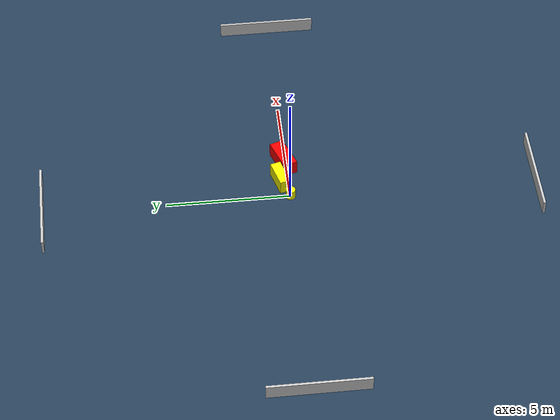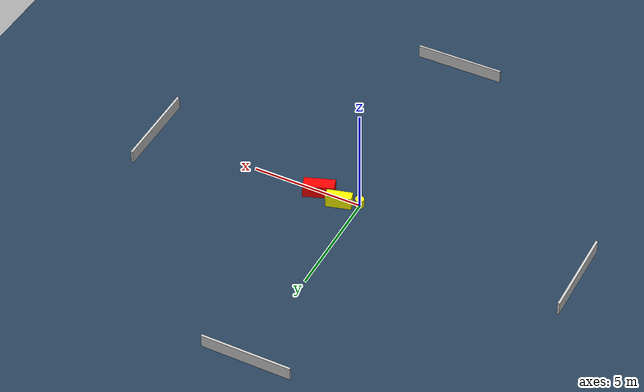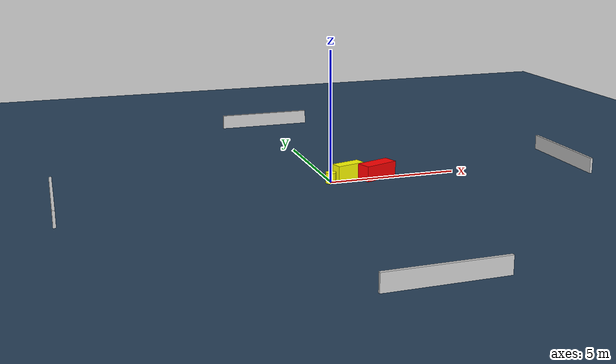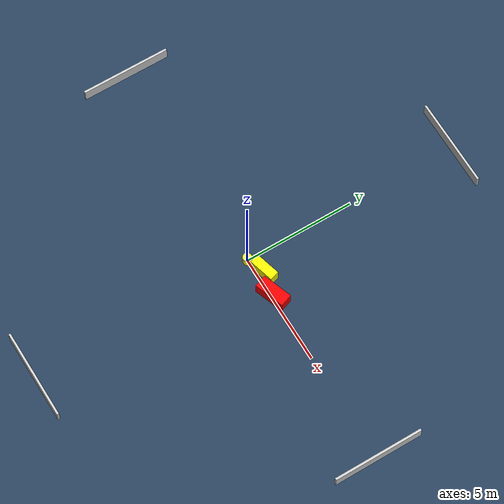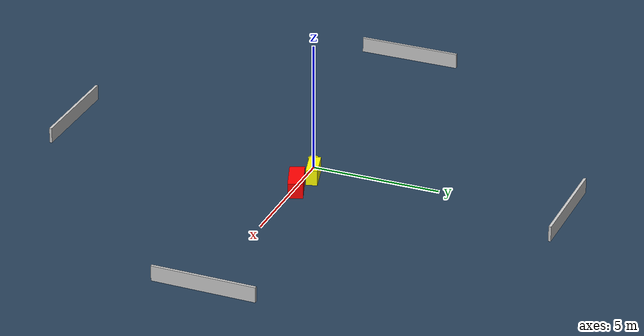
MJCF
<?xml version="1.0" ?>
<mujoco model="generated_environment">
  <option timestep="0.01" integrator="RK4" cone="elliptic"/>
  <default>
    <geom density="1"/>
  </default>
  <asset>
    <texture builtin="gradient" height="3072" name="skybox" rgb1="0.3 0.5 0.7" rgb2="0 0 0" type="skybox" width="512"/>
    <texture builtin="checker" height="300" name="groundplane" rgb1="0.2 0.3 0.4" rgb2="0.1 0.2 0.3" type="2d" width="300"/>
    <material name="groundplane" reflectance="0.2" texrepeat="5 5" texture="groundplane"/>
  </asset>
  <worldbody>
    <light dir="0 0 -1" directional="true" pos="0 0 1.5"/>
    <geom condim="3" friction="0.5 0.005 0.001" material="groundplane" name="floor" pos="0 0 0" size="0 0 0.05" type="plane"/>
    <body name="walls">
      <geom name="wall_1" condim="4" pos="-10.0 0.0 0.3" rgba="0.800000011920929 0.800000011920929 0.800000011920929 1.0" size="0.05 2.0 0.3" type="box"/>
      <geom name="wall_2" condim="4" pos="10.0 0.0 0.3" rgba="0.800000011920929 0.800000011920929 0.800000011920929 1.0" size="0.05 2.0 0.3" type="box"/>
      <geom name="wall_3" condim="4" pos="0.0 -10.0 0.3" rgba="0.800000011920929 0.800000011920929 0.800000011920929 1.0" size="2.0 0.05 0.3" type="box"/>
      <geom name="wall_4" condim="4" pos="0.0 10.0 0.3" rgba="0.800000011920929 0.800000011920929 0.800000011920929 1.0" size="2.0 0.05 0.3" type="box"/>
    </body>
    <body name="robot">
      <joint name="joint_x" type="slide" pos="0 0 0" axis="1 0 0"/>
      <joint name="joint_y" type="slide" pos="0 0 0" axis="0 1 0"/>
      <geom name="robot" type="cylinder" pos="0.0 0.0 0.2" size="0.2 0.2 0.0" mass="5.0" friction="1.0 0.005 0.0001" condim="4" rgba="1.0 1.0 0.0 1.0"/>
    </body>
    <body name="obstacle_1_movable">
      <geom name="obstacle_1_movable" condim="4" pos="0.8111450164523701 0.3270737324277453 0.3" euler="0 0 15.356451155838888" friction="0.0 0.005 0.001" rgba="1.0 1.0 0.0 1.0" size="0.5695489554465669 0.21942970310142773 0.3" type="box" mass="0.1"/>
      <joint type="free"/>
    </body>
    <body name="obstacle_2_static">
      <geom name="obstacle_2_static" condim="4" pos="1.8880121366395335 0.09147859256934919 0.3" euler="0 0 199.65897304361252" friction="0.0 0.005 0.001" rgba="1.0 0.0 0.0 1.0" size="0.6879889329199586 0.28666182518799066 0.3" type="box"/>
    </body>
  </worldbody>
  <actuator>
    <motor name="actuator_x" joint="joint_x" gear="1" ctrlrange="-1 1"/>
    <motor name="actuator_y" joint="joint_y" gear="1" ctrlrange="-1 1"/>
  </actuator>
</mujoco>
